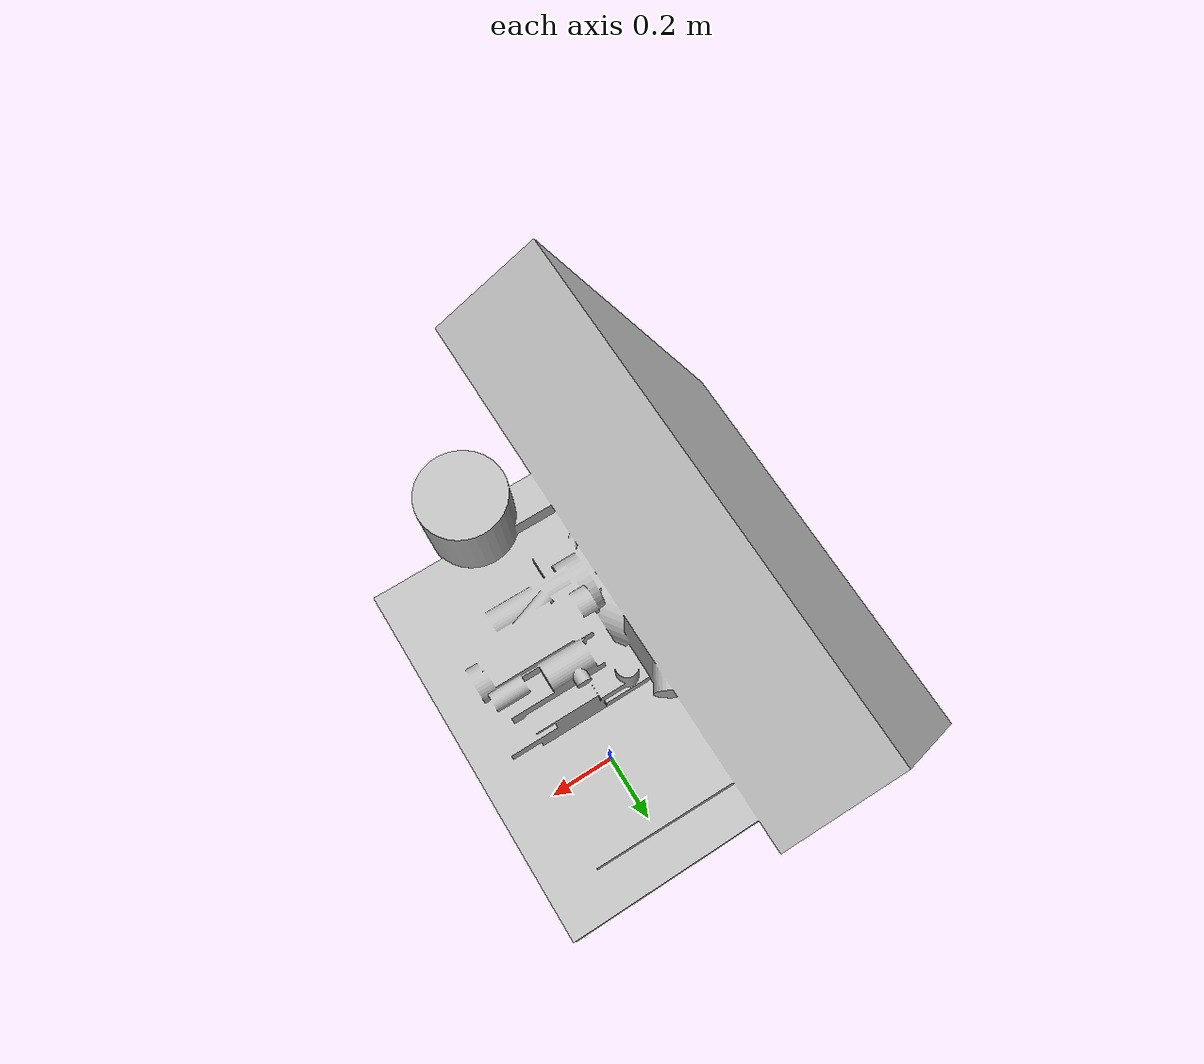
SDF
<sdf version="1.6">
    <model name="car_scene5_real">
        <allow_auto_disable>true</allow_auto_disable>
        <link name="car_scene5_real">
            <kinematic>true</kinematic>
            <pose>-0.03 -0.20 0.14 0 0 0</pose>
            <visual name="visual">
                <geometry>
                    <mesh>
                        <uri>model://car_scene5_real/meshes/car_scene5_real.stl</uri>
                    </mesh>
                </geometry>
            </visual>
            <collision name="collision">
                <geometry>
                    <mesh>
                        <uri>model://car_scene5_real/meshes/car_scene5_real.stl</uri>
                    </mesh>
                </geometry>
            </collision>
        </link>
    </model>
</sdf>
